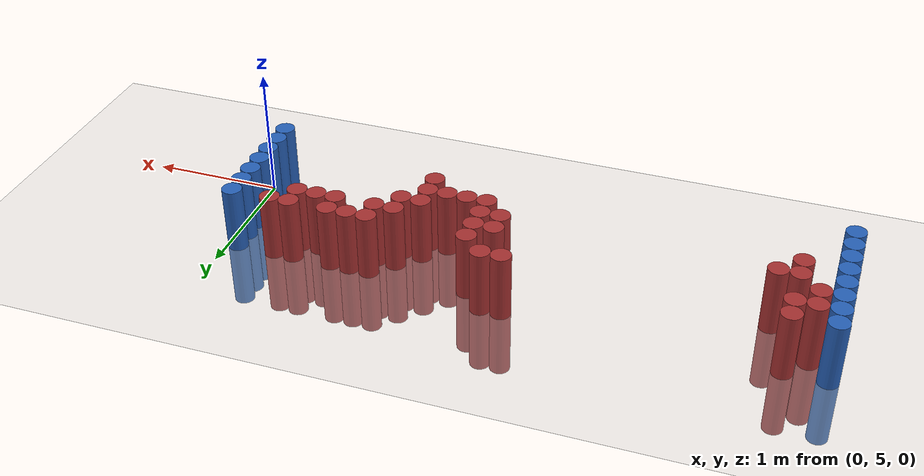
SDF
<sdf version="1.6">
 <world name="default">
  <model name="ground_plane">
   <static>1</static>
   <link name="link">
    <collision name="collision">
     <geometry><plane><normal>0 0 1</normal><size>100 100</size></plane></geometry>
     <surface><friction><ode><mu>100</mu><mu2>50</mu2></ode></friction></surface>
    </collision>
    <visual name="visual">
     <cast_shadows>0</cast_shadows>
     <geometry><plane><normal>0 0 1</normal><size>100 100</size></plane></geometry>
     <material>
      <script><uri>file://media/materials/scripts/gazebo.material</uri><name>Gazebo/Grey</name></script>
     </material>
    </visual>
   </link>
  </model>
  <model name="unit_cylinder_92">
   <static>1</static>
   <pose>-0.075000 4.875000 0.000000 0.000000 0.000000 0.000000</pose>
   <link name="link">
    <inertial>
     <mass>1</mass>
     <inertia><ixx>0.145833</ixx><ixy>0</ixy><ixz>0</ixz><iyy>0.145833</iyy><iyz>0</iyz><izz>0.125</izz></inertia>
    </inertial>
    <collision name="collision">
     <geometry><cylinder><radius>0.075000</radius><length>1</length></cylinder></geometry>
    </collision>
    <visual name="visual">
     <geometry><cylinder><radius>0.075000</radius><length>1</length></cylinder></geometry>
     <material>
      <ambient>0.152000 0.379000 0.720000 1</ambient>
      <diffuse>0.152000 0.379000 0.720000 1</diffuse>
     </material>
     <material>
      <script><name>Gazebo/Grey</name><uri>file://media/materials/scripts/gazebo.material</uri></script>
     </material>
    </visual>
   </link>
  </model>
  <model name="unit_cylinder_93">
   <static>1</static>
   <pose>-4.425000 4.875000 0.000000 0.000000 0.000000 0.000000</pose>
   <link name="link">
    <inertial>
     <mass>1</mass>
     <inertia><ixx>0.145833</ixx><ixy>0</ixy><ixz>0</ixz><iyy>0.145833</iyy><iyz>0</iyz><izz>0.125</izz></inertia>
    </inertial>
    <collision name="collision">
     <geometry><cylinder><radius>0.075000</radius><length>1</length></cylinder></geometry>
    </collision>
    <visual name="visual">
     <geometry><cylinder><radius>0.075000</radius><length>1</length></cylinder></geometry>
     <material>
      <ambient>0.152000 0.379000 0.720000 1</ambient>
      <diffuse>0.152000 0.379000 0.720000 1</diffuse>
     </material>
     <material>
      <script><name>Gazebo/Grey</name><uri>file://media/materials/scripts/gazebo.material</uri></script>
     </material>
    </visual>
   </link>
  </model>
  <model name="unit_cylinder_94">
   <static>1</static>
   <pose>-0.075000 5.025000 0.000000 0.000000 0.000000 0.000000</pose>
   <link name="link">
    <inertial>
     <mass>1</mass>
     <inertia><ixx>0.145833</ixx><ixy>0</ixy><ixz>0</ixz><iyy>0.145833</iyy><iyz>0</iyz><izz>0.125</izz></inertia>
    </inertial>
    <collision name="collision">
     <geometry><cylinder><radius>0.075000</radius><length>1</length></cylinder></geometry>
    </collision>
    <visual name="visual">
     <geometry><cylinder><radius>0.075000</radius><length>1</length></cylinder></geometry>
     <material>
      <ambient>0.152000 0.379000 0.720000 1</ambient>
      <diffuse>0.152000 0.379000 0.720000 1</diffuse>
     </material>
     <material>
      <script><name>Gazebo/Grey</name><uri>file://media/materials/scripts/gazebo.material</uri></script>
     </material>
    </visual>
   </link>
  </model>
  <model name="unit_cylinder_95">
   <static>1</static>
   <pose>-4.425000 5.025000 0.000000 0.000000 0.000000 0.000000</pose>
   <link name="link">
    <inertial>
     <mass>1</mass>
     <inertia><ixx>0.145833</ixx><ixy>0</ixy><ixz>0</ixz><iyy>0.145833</iyy><iyz>0</iyz><izz>0.125</izz></inertia>
    </inertial>
    <collision name="collision">
     <geometry><cylinder><radius>0.075000</radius><length>1</length></cylinder></geometry>
    </collision>
    <visual name="visual">
     <geometry><cylinder><radius>0.075000</radius><length>1</length></cylinder></geometry>
     <material>
      <ambient>0.152000 0.379000 0.720000 1</ambient>
      <diffuse>0.152000 0.379000 0.720000 1</diffuse>
     </material>
     <material>
      <script><name>Gazebo/Grey</name><uri>file://media/materials/scripts/gazebo.material</uri></script>
     </material>
    </visual>
   </link>
  </model>
  <model name="unit_cylinder_96">
   <static>1</static>
   <pose>-4.425000 5.175000 0.000000 0.000000 0.000000 0.000000</pose>
   <link name="link">
    <inertial>
     <mass>1</mass>
     <inertia><ixx>0.145833</ixx><ixy>0</ixy><ixz>0</ixz><iyy>0.145833</iyy><iyz>0</iyz><izz>0.125</izz></inertia>
    </inertial>
    <collision name="collision">
     <geometry><cylinder><radius>0.075000</radius><length>1</length></cylinder></geometry>
    </collision>
    <visual name="visual">
     <geometry><cylinder><radius>0.075000</radius><length>1</length></cylinder></geometry>
     <material>
      <ambient>0.152000 0.379000 0.720000 1</ambient>
      <diffuse>0.152000 0.379000 0.720000 1</diffuse>
     </material>
     <material>
      <script><name>Gazebo/Grey</name><uri>file://media/materials/scripts/gazebo.material</uri></script>
     </material>
    </visual>
   </link>
  </model>
  <model name="unit_cylinder_97">
   <static>1</static>
   <pose>-4.425000 5.325000 0.000000 0.000000 0.000000 0.000000</pose>
   <link name="link">
    <inertial>
     <mass>1</mass>
     <inertia><ixx>0.145833</ixx><ixy>0</ixy><ixz>0</ixz><iyy>0.145833</iyy><iyz>0</iyz><izz>0.125</izz></inertia>
    </inertial>
    <collision name="collision">
     <geometry><cylinder><radius>0.075000</radius><length>1</length></cylinder></geometry>
    </collision>
    <visual name="visual">
     <geometry><cylinder><radius>0.075000</radius><length>1</length></cylinder></geometry>
     <material>
      <ambient>0.152000 0.379000 0.720000 1</ambient>
      <diffuse>0.152000 0.379000 0.720000 1</diffuse>
     </material>
     <material>
      <script><name>Gazebo/Grey</name><uri>file://media/materials/scripts/gazebo.material</uri></script>
     </material>
    </visual>
   </link>
  </model>
  <model name="unit_cylinder_98">
   <static>1</static>
   <pose>-4.425000 5.475000 0.000000 0.000000 0.000000 0.000000</pose>
   <link name="link">
    <inertial>
     <mass>1</mass>
     <inertia><ixx>0.145833</ixx><ixy>0</ixy><ixz>0</ixz><iyy>0.145833</iyy><iyz>0</iyz><izz>0.125</izz></inertia>
    </inertial>
    <collision name="collision">
     <geometry><cylinder><radius>0.075000</radius><length>1</length></cylinder></geometry>
    </collision>
    <visual name="visual">
     <geometry><cylinder><radius>0.075000</radius><length>1</length></cylinder></geometry>
     <material>
      <ambient>0.152000 0.379000 0.720000 1</ambient>
      <diffuse>0.152000 0.379000 0.720000 1</diffuse>
     </material>
     <material>
      <script><name>Gazebo/Grey</name><uri>file://media/materials/scripts/gazebo.material</uri></script>
     </material>
    </visual>
   </link>
  </model>
  <model name="unit_cylinder_99">
   <static>1</static>
   <pose>-4.425000 5.625000 0.000000 0.000000 0.000000 0.000000</pose>
   <link name="link">
    <inertial>
     <mass>1</mass>
     <inertia><ixx>0.145833</ixx><ixy>0</ixy><ixz>0</ixz><iyy>0.145833</iyy><iyz>0</iyz><izz>0.125</izz></inertia>
    </inertial>
    <collision name="collision">
     <geometry><cylinder><radius>0.075000</radius><length>1</length></cylinder></geometry>
    </collision>
    <visual name="visual">
     <geometry><cylinder><radius>0.075000</radius><length>1</length></cylinder></geometry>
     <material>
      <ambient>0.152000 0.379000 0.720000 1</ambient>
      <diffuse>0.152000 0.379000 0.720000 1</diffuse>
     </material>
     <material>
      <script><name>Gazebo/Grey</name><uri>file://media/materials/scripts/gazebo.material</uri></script>
     </material>
    </visual>
   </link>
  </model>
  <model name="unit_cylinder_100">
   <static>1</static>
   <pose>-4.425000 5.775000 0.000000 0.000000 0.000000 0.000000</pose>
   <link name="link">
    <inertial>
     <mass>1</mass>
     <inertia><ixx>0.145833</ixx><ixy>0</ixy><ixz>0</ixz><iyy>0.145833</iyy><iyz>0</iyz><izz>0.125</izz></inertia>
    </inertial>
    <collision name="collision">
     <geometry><cylinder><radius>0.075000</radius><length>1</length></cylinder></geometry>
    </collision>
    <visual name="visual">
     <geometry><cylinder><radius>0.075000</radius><length>1</length></cylinder></geometry>
     <material>
      <ambient>0.152000 0.379000 0.720000 1</ambient>
      <diffuse>0.152000 0.379000 0.720000 1</diffuse>
     </material>
     <material>
      <script><name>Gazebo/Grey</name><uri>file://media/materials/scripts/gazebo.material</uri></script>
     </material>
    </visual>
   </link>
  </model>
  <model name="unit_cylinder_101">
   <static>1</static>
   <pose>-4.425000 5.925000 0.000000 0.000000 0.000000 0.000000</pose>
   <link name="link">
    <inertial>
     <mass>1</mass>
     <inertia><ixx>0.145833</ixx><ixy>0</ixy><ixz>0</ixz><iyy>0.145833</iyy><iyz>0</iyz><izz>0.125</izz></inertia>
    </inertial>
    <collision name="collision">
     <geometry><cylinder><radius>0.075000</radius><length>1</length></cylinder></geometry>
    </collision>
    <visual name="visual">
     <geometry><cylinder><radius>0.075000</radius><length>1</length></cylinder></geometry>
     <material>
      <ambient>0.152000 0.379000 0.720000 1</ambient>
      <diffuse>0.152000 0.379000 0.720000 1</diffuse>
     </material>
     <material>
      <script><name>Gazebo/Grey</name><uri>file://media/materials/scripts/gazebo.material</uri></script>
     </material>
    </visual>
   </link>
  </model>
  <model name="unit_cylinder_126">
   <static>1</static>
   <pose>-4.275000 5.625000 0.000000 0.000000 0.000000 0.000000</pose>
   <link name="link">
    <inertial>
     <mass>1</mass>
     <inertia><ixx>0.145833</ixx><ixy>0</ixy><ixz>0</ixz><iyy>0.145833</iyy><iyz>0</iyz><izz>0.125</izz></inertia>
    </inertial>
    <collision name="collision">
     <geometry><cylinder><radius>0.075000</radius><length>1</length></cylinder></geometry>
    </collision>
    <visual name="visual">
     <geometry><cylinder><radius>0.075000</radius><length>1</length></cylinder></geometry>
     <material>
      <ambient>0.648000 0.192000 0.192000 1</ambient>
      <diffuse>0.648000 0.192000 0.192000 1</diffuse>
     </material>
     <material>
      <script><name>Gazebo/Grey</name><uri>file://media/materials/scripts/gazebo.material</uri></script>
     </material>
    </visual>
   </link>
  </model>
  <model name="unit_cylinder_127">
   <static>1</static>
   <pose>-4.275000 5.775000 0.000000 0.000000 0.000000 0.000000</pose>
   <link name="link">
    <inertial>
     <mass>1</mass>
     <inertia><ixx>0.145833</ixx><ixy>0</ixy><ixz>0</ixz><iyy>0.145833</iyy><iyz>0</iyz><izz>0.125</izz></inertia>
    </inertial>
    <collision name="collision">
     <geometry><cylinder><radius>0.075000</radius><length>1</length></cylinder></geometry>
    </collision>
    <visual name="visual">
     <geometry><cylinder><radius>0.075000</radius><length>1</length></cylinder></geometry>
     <material>
      <ambient>0.648000 0.192000 0.192000 1</ambient>
      <diffuse>0.648000 0.192000 0.192000 1</diffuse>
     </material>
     <material>
      <script><name>Gazebo/Grey</name><uri>file://media/materials/scripts/gazebo.material</uri></script>
     </material>
    </visual>
   </link>
  </model>
  <model name="unit_cylinder_129">
   <static>1</static>
   <pose>-4.125000 5.325000 0.000000 0.000000 0.000000 0.000000</pose>
   <link name="link">
    <inertial>
     <mass>1</mass>
     <inertia><ixx>0.145833</ixx><ixy>0</ixy><ixz>0</ixz><iyy>0.145833</iyy><iyz>0</iyz><izz>0.125</izz></inertia>
    </inertial>
    <collision name="collision">
     <geometry><cylinder><radius>0.075000</radius><length>1</length></cylinder></geometry>
    </collision>
    <visual name="visual">
     <geometry><cylinder><radius>0.075000</radius><length>1</length></cylinder></geometry>
     <material>
      <ambient>0.648000 0.192000 0.192000 1</ambient>
      <diffuse>0.648000 0.192000 0.192000 1</diffuse>
     </material>
     <material>
      <script><name>Gazebo/Grey</name><uri>file://media/materials/scripts/gazebo.material</uri></script>
     </material>
    </visual>
   </link>
  </model>
  <model name="unit_cylinder_130">
   <static>1</static>
   <pose>-4.125000 5.475000 0.000000 0.000000 0.000000 0.000000</pose>
   <link name="link">
    <inertial>
     <mass>1</mass>
     <inertia><ixx>0.145833</ixx><ixy>0</ixy><ixz>0</ixz><iyy>0.145833</iyy><iyz>0</iyz><izz>0.125</izz></inertia>
    </inertial>
    <collision name="collision">
     <geometry><cylinder><radius>0.075000</radius><length>1</length></cylinder></geometry>
    </collision>
    <visual name="visual">
     <geometry><cylinder><radius>0.075000</radius><length>1</length></cylinder></geometry>
     <material>
      <ambient>0.648000 0.192000 0.192000 1</ambient>
      <diffuse>0.648000 0.192000 0.192000 1</diffuse>
     </material>
     <material>
      <script><name>Gazebo/Grey</name><uri>file://media/materials/scripts/gazebo.material</uri></script>
     </material>
    </visual>
   </link>
  </model>
  <model name="unit_cylinder_131">
   <static>1</static>
   <pose>-4.125000 5.775000 0.000000 0.000000 0.000000 0.000000</pose>
   <link name="link">
    <inertial>
     <mass>1</mass>
     <inertia><ixx>0.145833</ixx><ixy>0</ixy><ixz>0</ixz><iyy>0.145833</iyy><iyz>0</iyz><izz>0.125</izz></inertia>
    </inertial>
    <collision name="collision">
     <geometry><cylinder><radius>0.075000</radius><length>1</length></cylinder></geometry>
    </collision>
    <visual name="visual">
     <geometry><cylinder><radius>0.075000</radius><length>1</length></cylinder></geometry>
     <material>
      <ambient>0.648000 0.192000 0.192000 1</ambient>
      <diffuse>0.648000 0.192000 0.192000 1</diffuse>
     </material>
     <material>
      <script><name>Gazebo/Grey</name><uri>file://media/materials/scripts/gazebo.material</uri></script>
     </material>
    </visual>
   </link>
  </model>
  <model name="unit_cylinder_132">
   <static>1</static>
   <pose>-4.125000 5.925000 0.000000 0.000000 0.000000 0.000000</pose>
   <link name="link">
    <inertial>
     <mass>1</mass>
     <inertia><ixx>0.145833</ixx><ixy>0</ixy><ixz>0</ixz><iyy>0.145833</iyy><iyz>0</iyz><izz>0.125</izz></inertia>
    </inertial>
    <collision name="collision">
     <geometry><cylinder><radius>0.075000</radius><length>1</length></cylinder></geometry>
    </collision>
    <visual name="visual">
     <geometry><cylinder><radius>0.075000</radius><length>1</length></cylinder></geometry>
     <material>
      <ambient>0.648000 0.192000 0.192000 1</ambient>
      <diffuse>0.648000 0.192000 0.192000 1</diffuse>
     </material>
     <material>
      <script><name>Gazebo/Grey</name><uri>file://media/materials/scripts/gazebo.material</uri></script>
     </material>
    </visual>
   </link>
  </model>
  <model name="unit_cylinder_142">
   <static>1</static>
   <pose>-3.975000 5.475000 0.000000 0.000000 0.000000 0.000000</pose>
   <link name="link">
    <inertial>
     <mass>1</mass>
     <inertia><ixx>0.145833</ixx><ixy>0</ixy><ixz>0</ixz><iyy>0.145833</iyy><iyz>0</iyz><izz>0.125</izz></inertia>
    </inertial>
    <collision name="collision">
     <geometry><cylinder><radius>0.075000</radius><length>1</length></cylinder></geometry>
    </collision>
    <visual name="visual">
     <geometry><cylinder><radius>0.075000</radius><length>1</length></cylinder></geometry>
     <material>
      <ambient>0.648000 0.192000 0.192000 1</ambient>
      <diffuse>0.648000 0.192000 0.192000 1</diffuse>
     </material>
     <material>
      <script><name>Gazebo/Grey</name><uri>file://media/materials/scripts/gazebo.material</uri></script>
     </material>
    </visual>
   </link>
  </model>
  <model name="unit_cylinder_185">
   <static>1</static>
   <pose>-2.175000 5.925000 0.000000 0.000000 0.000000 0.000000</pose>
   <link name="link">
    <inertial>
     <mass>1</mass>
     <inertia><ixx>0.145833</ixx><ixy>0</ixy><ixz>0</ixz><iyy>0.145833</iyy><iyz>0</iyz><izz>0.125</izz></inertia>
    </inertial>
    <collision name="collision">
     <geometry><cylinder><radius>0.075000</radius><length>1</length></cylinder></geometry>
    </collision>
    <visual name="visual">
     <geometry><cylinder><radius>0.075000</radius><length>1</length></cylinder></geometry>
     <material>
      <ambient>0.648000 0.192000 0.192000 1</ambient>
      <diffuse>0.648000 0.192000 0.192000 1</diffuse>
     </material>
     <material>
      <script><name>Gazebo/Grey</name><uri>file://media/materials/scripts/gazebo.material</uri></script>
     </material>
    </visual>
   </link>
  </model>
  <model name="unit_cylinder_190">
   <static>1</static>
   <pose>-2.025000 5.475000 0.000000 0.000000 0.000000 0.000000</pose>
   <link name="link">
    <inertial>
     <mass>1</mass>
     <inertia><ixx>0.145833</ixx><ixy>0</ixy><ixz>0</ixz><iyy>0.145833</iyy><iyz>0</iyz><izz>0.125</izz></inertia>
    </inertial>
    <collision name="collision">
     <geometry><cylinder><radius>0.075000</radius><length>1</length></cylinder></geometry>
    </collision>
    <visual name="visual">
     <geometry><cylinder><radius>0.075000</radius><length>1</length></cylinder></geometry>
     <material>
      <ambient>0.648000 0.192000 0.192000 1</ambient>
      <diffuse>0.648000 0.192000 0.192000 1</diffuse>
     </material>
     <material>
      <script><name>Gazebo/Grey</name><uri>file://media/materials/scripts/gazebo.material</uri></script>
     </material>
    </visual>
   </link>
  </model>
  <model name="unit_cylinder_191">
   <static>1</static>
   <pose>-2.025000 5.625000 0.000000 0.000000 0.000000 0.000000</pose>
   <link name="link">
    <inertial>
     <mass>1</mass>
     <inertia><ixx>0.145833</ixx><ixy>0</ixy><ixz>0</ixz><iyy>0.145833</iyy><iyz>0</iyz><izz>0.125</izz></inertia>
    </inertial>
    <collision name="collision">
     <geometry><cylinder><radius>0.075000</radius><length>1</length></cylinder></geometry>
    </collision>
    <visual name="visual">
     <geometry><cylinder><radius>0.075000</radius><length>1</length></cylinder></geometry>
     <material>
      <ambient>0.648000 0.192000 0.192000 1</ambient>
      <diffuse>0.648000 0.192000 0.192000 1</diffuse>
     </material>
     <material>
      <script><name>Gazebo/Grey</name><uri>file://media/materials/scripts/gazebo.material</uri></script>
     </material>
    </visual>
   </link>
  </model>
  <model name="unit_cylinder_192">
   <static>1</static>
   <pose>-2.025000 5.925000 0.000000 0.000000 0.000000 0.000000</pose>
   <link name="link">
    <inertial>
     <mass>1</mass>
     <inertia><ixx>0.145833</ixx><ixy>0</ixy><ixz>0</ixz><iyy>0.145833</iyy><iyz>0</iyz><izz>0.125</izz></inertia>
    </inertial>
    <collision name="collision">
     <geometry><cylinder><radius>0.075000</radius><length>1</length></cylinder></geometry>
    </collision>
    <visual name="visual">
     <geometry><cylinder><radius>0.075000</radius><length>1</length></cylinder></geometry>
     <material>
      <ambient>0.648000 0.192000 0.192000 1</ambient>
      <diffuse>0.648000 0.192000 0.192000 1</diffuse>
     </material>
     <material>
      <script><name>Gazebo/Grey</name><uri>file://media/materials/scripts/gazebo.material</uri></script>
     </material>
    </visual>
   </link>
  </model>
  <model name="unit_cylinder_197">
   <static>1</static>
   <pose>-1.875000 5.325000 0.000000 0.000000 0.000000 0.000000</pose>
   <link name="link">
    <inertial>
     <mass>1</mass>
     <inertia><ixx>0.145833</ixx><ixy>0</ixy><ixz>0</ixz><iyy>0.145833</iyy><iyz>0</iyz><izz>0.125</izz></inertia>
    </inertial>
    <collision name="collision">
     <geometry><cylinder><radius>0.075000</radius><length>1</length></cylinder></geometry>
    </collision>
    <visual name="visual">
     <geometry><cylinder><radius>0.075000</radius><length>1</length></cylinder></geometry>
     <material>
      <ambient>0.648000 0.192000 0.192000 1</ambient>
      <diffuse>0.648000 0.192000 0.192000 1</diffuse>
     </material>
     <material>
      <script><name>Gazebo/Grey</name><uri>file://media/materials/scripts/gazebo.material</uri></script>
     </material>
    </visual>
   </link>
  </model>
  <model name="unit_cylinder_198">
   <static>1</static>
   <pose>-1.875000 5.475000 0.000000 0.000000 0.000000 0.000000</pose>
   <link name="link">
    <inertial>
     <mass>1</mass>
     <inertia><ixx>0.145833</ixx><ixy>0</ixy><ixz>0</ixz><iyy>0.145833</iyy><iyz>0</iyz><izz>0.125</izz></inertia>
    </inertial>
    <collision name="collision">
     <geometry><cylinder><radius>0.075000</radius><length>1</length></cylinder></geometry>
    </collision>
    <visual name="visual">
     <geometry><cylinder><radius>0.075000</radius><length>1</length></cylinder></geometry>
     <material>
      <ambient>0.648000 0.192000 0.192000 1</ambient>
      <diffuse>0.648000 0.192000 0.192000 1</diffuse>
     </material>
     <material>
      <script><name>Gazebo/Grey</name><uri>file://media/materials/scripts/gazebo.material</uri></script>
     </material>
    </visual>
   </link>
  </model>
  <model name="unit_cylinder_199">
   <static>1</static>
   <pose>-1.875000 5.625000 0.000000 0.000000 0.000000 0.000000</pose>
   <link name="link">
    <inertial>
     <mass>1</mass>
     <inertia><ixx>0.145833</ixx><ixy>0</ixy><ixz>0</ixz><iyy>0.145833</iyy><iyz>0</iyz><izz>0.125</izz></inertia>
    </inertial>
    <collision name="collision">
     <geometry><cylinder><radius>0.075000</radius><length>1</length></cylinder></geometry>
    </collision>
    <visual name="visual">
     <geometry><cylinder><radius>0.075000</radius><length>1</length></cylinder></geometry>
     <material>
      <ambient>0.648000 0.192000 0.192000 1</ambient>
      <diffuse>0.648000 0.192000 0.192000 1</diffuse>
     </material>
     <material>
      <script><name>Gazebo/Grey</name><uri>file://media/materials/scripts/gazebo.material</uri></script>
     </material>
    </visual>
   </link>
  </model>
  <model name="unit_cylinder_200">
   <static>1</static>
   <pose>-1.875000 5.775000 0.000000 0.000000 0.000000 0.000000</pose>
   <link name="link">
    <inertial>
     <mass>1</mass>
     <inertia><ixx>0.145833</ixx><ixy>0</ixy><ixz>0</ixz><iyy>0.145833</iyy><iyz>0</iyz><izz>0.125</izz></inertia>
    </inertial>
    <collision name="collision">
     <geometry><cylinder><radius>0.075000</radius><length>1</length></cylinder></geometry>
    </collision>
    <visual name="visual">
     <geometry><cylinder><radius>0.075000</radius><length>1</length></cylinder></geometry>
     <material>
      <ambient>0.648000 0.192000 0.192000 1</ambient>
      <diffuse>0.648000 0.192000 0.192000 1</diffuse>
     </material>
     <material>
      <script><name>Gazebo/Grey</name><uri>file://media/materials/scripts/gazebo.material</uri></script>
     </material>
    </visual>
   </link>
  </model>
  <model name="unit_cylinder_204">
   <static>1</static>
   <pose>-1.725000 5.325000 0.000000 0.000000 0.000000 0.000000</pose>
   <link name="link">
    <inertial>
     <mass>1</mass>
     <inertia><ixx>0.145833</ixx><ixy>0</ixy><ixz>0</ixz><iyy>0.145833</iyy><iyz>0</iyz><izz>0.125</izz></inertia>
    </inertial>
    <collision name="collision">
     <geometry><cylinder><radius>0.075000</radius><length>1</length></cylinder></geometry>
    </collision>
    <visual name="visual">
     <geometry><cylinder><radius>0.075000</radius><length>1</length></cylinder></geometry>
     <material>
      <ambient>0.648000 0.192000 0.192000 1</ambient>
      <diffuse>0.648000 0.192000 0.192000 1</diffuse>
     </material>
     <material>
      <script><name>Gazebo/Grey</name><uri>file://media/materials/scripts/gazebo.material</uri></script>
     </material>
    </visual>
   </link>
  </model>
  <model name="unit_cylinder_206">
   <static>1</static>
   <pose>-1.575000 5.325000 0.000000 0.000000 0.000000 0.000000</pose>
   <link name="link">
    <inertial>
     <mass>1</mass>
     <inertia><ixx>0.145833</ixx><ixy>0</ixy><ixz>0</ixz><iyy>0.145833</iyy><iyz>0</iyz><izz>0.125</izz></inertia>
    </inertial>
    <collision name="collision">
     <geometry><cylinder><radius>0.075000</radius><length>1</length></cylinder></geometry>
    </collision>
    <visual name="visual">
     <geometry><cylinder><radius>0.075000</radius><length>1</length></cylinder></geometry>
     <material>
      <ambient>0.648000 0.192000 0.192000 1</ambient>
      <diffuse>0.648000 0.192000 0.192000 1</diffuse>
     </material>
     <material>
      <script><name>Gazebo/Grey</name><uri>file://media/materials/scripts/gazebo.material</uri></script>
     </material>
    </visual>
   </link>
  </model>
  <model name="unit_cylinder_208">
   <static>1</static>
   <pose>-1.425000 5.175000 0.000000 0.000000 0.000000 0.000000</pose>
   <link name="link">
    <inertial>
     <mass>1</mass>
     <inertia><ixx>0.145833</ixx><ixy>0</ixy><ixz>0</ixz><iyy>0.145833</iyy><iyz>0</iyz><izz>0.125</izz></inertia>
    </inertial>
    <collision name="collision">
     <geometry><cylinder><radius>0.075000</radius><length>1</length></cylinder></geometry>
    </collision>
    <visual name="visual">
     <geometry><cylinder><radius>0.075000</radius><length>1</length></cylinder></geometry>
     <material>
      <ambient>0.648000 0.192000 0.192000 1</ambient>
      <diffuse>0.648000 0.192000 0.192000 1</diffuse>
     </material>
     <material>
      <script><name>Gazebo/Grey</name><uri>file://media/materials/scripts/gazebo.material</uri></script>
     </material>
    </visual>
   </link>
  </model>
  <model name="unit_cylinder_209">
   <static>1</static>
   <pose>-1.425000 5.325000 0.000000 0.000000 0.000000 0.000000</pose>
   <link name="link">
    <inertial>
     <mass>1</mass>
     <inertia><ixx>0.145833</ixx><ixy>0</ixy><ixz>0</ixz><iyy>0.145833</iyy><iyz>0</iyz><izz>0.125</izz></inertia>
    </inertial>
    <collision name="collision">
     <geometry><cylinder><radius>0.075000</radius><length>1</length></cylinder></geometry>
    </collision>
    <visual name="visual">
     <geometry><cylinder><radius>0.075000</radius><length>1</length></cylinder></geometry>
     <material>
      <ambient>0.648000 0.192000 0.192000 1</ambient>
      <diffuse>0.648000 0.192000 0.192000 1</diffuse>
     </material>
     <material>
      <script><name>Gazebo/Grey</name><uri>file://media/materials/scripts/gazebo.material</uri></script>
     </material>
    </visual>
   </link>
  </model>
  <model name="unit_cylinder_210">
   <static>1</static>
   <pose>-1.425000 5.475000 0.000000 0.000000 0.000000 0.000000</pose>
   <link name="link">
    <inertial>
     <mass>1</mass>
     <inertia><ixx>0.145833</ixx><ixy>0</ixy><ixz>0</ixz><iyy>0.145833</iyy><iyz>0</iyz><izz>0.125</izz></inertia>
    </inertial>
    <collision name="collision">
     <geometry><cylinder><radius>0.075000</radius><length>1</length></cylinder></geometry>
    </collision>
    <visual name="visual">
     <geometry><cylinder><radius>0.075000</radius><length>1</length></cylinder></geometry>
     <material>
      <ambient>0.648000 0.192000 0.192000 1</ambient>
      <diffuse>0.648000 0.192000 0.192000 1</diffuse>
     </material>
     <material>
      <script><name>Gazebo/Grey</name><uri>file://media/materials/scripts/gazebo.material</uri></script>
     </material>
    </visual>
   </link>
  </model>
  <model name="unit_cylinder_214">
   <static>1</static>
   <pose>-1.275000 5.475000 0.000000 0.000000 0.000000 0.000000</pose>
   <link name="link">
    <inertial>
     <mass>1</mass>
     <inertia><ixx>0.145833</ixx><ixy>0</ixy><ixz>0</ixz><iyy>0.145833</iyy><iyz>0</iyz><izz>0.125</izz></inertia>
    </inertial>
    <collision name="collision">
     <geometry><cylinder><radius>0.075000</radius><length>1</length></cylinder></geometry>
    </collision>
    <visual name="visual">
     <geometry><cylinder><radius>0.075000</radius><length>1</length></cylinder></geometry>
     <material>
      <ambient>0.648000 0.192000 0.192000 1</ambient>
      <diffuse>0.648000 0.192000 0.192000 1</diffuse>
     </material>
     <material>
      <script><name>Gazebo/Grey</name><uri>file://media/materials/scripts/gazebo.material</uri></script>
     </material>
    </visual>
   </link>
  </model>
  <model name="unit_cylinder_215">
   <static>1</static>
   <pose>-1.275000 5.625000 0.000000 0.000000 0.000000 0.000000</pose>
   <link name="link">
    <inertial>
     <mass>1</mass>
     <inertia><ixx>0.145833</ixx><ixy>0</ixy><ixz>0</ixz><iyy>0.145833</iyy><iyz>0</iyz><izz>0.125</izz></inertia>
    </inertial>
    <collision name="collision">
     <geometry><cylinder><radius>0.075000</radius><length>1</length></cylinder></geometry>
    </collision>
    <visual name="visual">
     <geometry><cylinder><radius>0.075000</radius><length>1</length></cylinder></geometry>
     <material>
      <ambient>0.648000 0.192000 0.192000 1</ambient>
      <diffuse>0.648000 0.192000 0.192000 1</diffuse>
     </material>
     <material>
      <script><name>Gazebo/Grey</name><uri>file://media/materials/scripts/gazebo.material</uri></script>
     </material>
    </visual>
   </link>
  </model>
  <model name="unit_cylinder_217">
   <static>1</static>
   <pose>-1.125000 5.625000 0.000000 0.000000 0.000000 0.000000</pose>
   <link name="link">
    <inertial>
     <mass>1</mass>
     <inertia><ixx>0.145833</ixx><ixy>0</ixy><ixz>0</ixz><iyy>0.145833</iyy><iyz>0</iyz><izz>0.125</izz></inertia>
    </inertial>
    <collision name="collision">
     <geometry><cylinder><radius>0.075000</radius><length>1</length></cylinder></geometry>
    </collision>
    <visual name="visual">
     <geometry><cylinder><radius>0.075000</radius><length>1</length></cylinder></geometry>
     <material>
      <ambient>0.648000 0.192000 0.192000 1</ambient>
      <diffuse>0.648000 0.192000 0.192000 1</diffuse>
     </material>
     <material>
      <script><name>Gazebo/Grey</name><uri>file://media/materials/scripts/gazebo.material</uri></script>
     </material>
    </visual>
   </link>
  </model>
  <model name="unit_cylinder_218">
   <static>1</static>
   <pose>-1.125000 5.775000 0.000000 0.000000 0.000000 0.000000</pose>
   <link name="link">
    <inertial>
     <mass>1</mass>
     <inertia><ixx>0.145833</ixx><ixy>0</ixy><ixz>0</ixz><iyy>0.145833</iyy><iyz>0</iyz><izz>0.125</izz></inertia>
    </inertial>
    <collision name="collision">
     <geometry><cylinder><radius>0.075000</radius><length>1</length></cylinder></geometry>
    </collision>
    <visual name="visual">
     <geometry><cylinder><radius>0.075000</radius><length>1</length></cylinder></geometry>
     <material>
      <ambient>0.648000 0.192000 0.192000 1</ambient>
      <diffuse>0.648000 0.192000 0.192000 1</diffuse>
     </material>
     <material>
      <script><name>Gazebo/Grey</name><uri>file://media/materials/scripts/gazebo.material</uri></script>
     </material>
    </visual>
   </link>
  </model>
  <model name="unit_cylinder_220">
   <static>1</static>
   <pose>-0.975000 5.775000 0.000000 0.000000 0.000000 0.000000</pose>
   <link name="link">
    <inertial>
     <mass>1</mass>
     <inertia><ixx>0.145833</ixx><ixy>0</ixy><ixz>0</ixz><iyy>0.145833</iyy><iyz>0</iyz><izz>0.125</izz></inertia>
    </inertial>
    <collision name="collision">
     <geometry><cylinder><radius>0.075000</radius><length>1</length></cylinder></geometry>
    </collision>
    <visual name="visual">
     <geometry><cylinder><radius>0.075000</radius><length>1</length></cylinder></geometry>
     <material>
      <ambient>0.648000 0.192000 0.192000 1</ambient>
      <diffuse>0.648000 0.192000 0.192000 1</diffuse>
     </material>
     <material>
      <script><name>Gazebo/Grey</name><uri>file://media/materials/scripts/gazebo.material</uri></script>
     </material>
    </visual>
   </link>
  </model>
  <model name="unit_cylinder_222">
   <static>1</static>
   <pose>-0.825000 5.625000 0.000000 0.000000 0.000000 0.000000</pose>
   <link name="link">
    <inertial>
     <mass>1</mass>
     <inertia><ixx>0.145833</ixx><ixy>0</ixy><ixz>0</ixz><iyy>0.145833</iyy><iyz>0</iyz><izz>0.125</izz></inertia>
    </inertial>
    <collision name="collision">
     <geometry><cylinder><radius>0.075000</radius><length>1</length></cylinder></geometry>
    </collision>
    <visual name="visual">
     <geometry><cylinder><radius>0.075000</radius><length>1</length></cylinder></geometry>
     <material>
      <ambient>0.648000 0.192000 0.192000 1</ambient>
      <diffuse>0.648000 0.192000 0.192000 1</diffuse>
     </material>
     <material>
      <script><name>Gazebo/Grey</name><uri>file://media/materials/scripts/gazebo.material</uri></script>
     </material>
    </visual>
   </link>
  </model>
  <model name="unit_cylinder_223">
   <static>1</static>
   <pose>-0.825000 5.775000 0.000000 0.000000 0.000000 0.000000</pose>
   <link name="link">
    <inertial>
     <mass>1</mass>
     <inertia><ixx>0.145833</ixx><ixy>0</ixy><ixz>0</ixz><iyy>0.145833</iyy><iyz>0</iyz><izz>0.125</izz></inertia>
    </inertial>
    <collision name="collision">
     <geometry><cylinder><radius>0.075000</radius><length>1</length></cylinder></geometry>
    </collision>
    <visual name="visual">
     <geometry><cylinder><radius>0.075000</radius><length>1</length></cylinder></geometry>
     <material>
      <ambient>0.648000 0.192000 0.192000 1</ambient>
      <diffuse>0.648000 0.192000 0.192000 1</diffuse>
     </material>
     <material>
      <script><name>Gazebo/Grey</name><uri>file://media/materials/scripts/gazebo.material</uri></script>
     </material>
    </visual>
   </link>
  </model>
  <model name="unit_cylinder_226">
   <static>1</static>
   <pose>-0.675000 5.625000 0.000000 0.000000 0.000000 0.000000</pose>
   <link name="link">
    <inertial>
     <mass>1</mass>
     <inertia><ixx>0.145833</ixx><ixy>0</ixy><ixz>0</ixz><iyy>0.145833</iyy><iyz>0</iyz><izz>0.125</izz></inertia>
    </inertial>
    <collision name="collision">
     <geometry><cylinder><radius>0.075000</radius><length>1</length></cylinder></geometry>
    </collision>
    <visual name="visual">
     <geometry><cylinder><radius>0.075000</radius><length>1</length></cylinder></geometry>
     <material>
      <ambient>0.648000 0.192000 0.192000 1</ambient>
      <diffuse>0.648000 0.192000 0.192000 1</diffuse>
     </material>
     <material>
      <script><name>Gazebo/Grey</name><uri>file://media/materials/scripts/gazebo.material</uri></script>
     </material>
    </visual>
   </link>
  </model>
  <model name="unit_cylinder_228">
   <static>1</static>
   <pose>-0.525000 5.625000 0.000000 0.000000 0.000000 0.000000</pose>
   <link name="link">
    <inertial>
     <mass>1</mass>
     <inertia><ixx>0.145833</ixx><ixy>0</ixy><ixz>0</ixz><iyy>0.145833</iyy><iyz>0</iyz><izz>0.125</izz></inertia>
    </inertial>
    <collision name="collision">
     <geometry><cylinder><radius>0.075000</radius><length>1</length></cylinder></geometry>
    </collision>
    <visual name="visual">
     <geometry><cylinder><radius>0.075000</radius><length>1</length></cylinder></geometry>
     <material>
      <ambient>0.648000 0.192000 0.192000 1</ambient>
      <diffuse>0.648000 0.192000 0.192000 1</diffuse>
     </material>
     <material>
      <script><name>Gazebo/Grey</name><uri>file://media/materials/scripts/gazebo.material</uri></script>
     </material>
    </visual>
   </link>
  </model>
  <model name="unit_cylinder_229">
   <static>1</static>
   <pose>-0.525000 5.775000 0.000000 0.000000 0.000000 0.000000</pose>
   <link name="link">
    <inertial>
     <mass>1</mass>
     <inertia><ixx>0.145833</ixx><ixy>0</ixy><ixz>0</ixz><iyy>0.145833</iyy><iyz>0</iyz><izz>0.125</izz></inertia>
    </inertial>
    <collision name="collision">
     <geometry><cylinder><radius>0.075000</radius><length>1</length></cylinder></geometry>
    </collision>
    <visual name="visual">
     <geometry><cylinder><radius>0.075000</radius><length>1</length></cylinder></geometry>
     <material>
      <ambient>0.648000 0.192000 0.192000 1</ambient>
      <diffuse>0.648000 0.192000 0.192000 1</diffuse>
     </material>
     <material>
      <script><name>Gazebo/Grey</name><uri>file://media/materials/scripts/gazebo.material</uri></script>
     </material>
    </visual>
   </link>
  </model>
  <model name="unit_cylinder_237">
   <static>1</static>
   <pose>-0.375000 5.775000 0.000000 0.000000 0.000000 0.000000</pose>
   <link name="link">
    <inertial>
     <mass>1</mass>
     <inertia><ixx>0.145833</ixx><ixy>0</ixy><ixz>0</ixz><iyy>0.145833</iyy><iyz>0</iyz><izz>0.125</izz></inertia>
    </inertial>
    <collision name="collision">
     <geometry><cylinder><radius>0.075000</radius><length>1</length></cylinder></geometry>
    </collision>
    <visual name="visual">
     <geometry><cylinder><radius>0.075000</radius><length>1</length></cylinder></geometry>
     <material>
      <ambient>0.648000 0.192000 0.192000 1</ambient>
      <diffuse>0.648000 0.192000 0.192000 1</diffuse>
     </material>
     <material>
      <script><name>Gazebo/Grey</name><uri>file://media/materials/scripts/gazebo.material</uri></script>
     </material>
    </visual>
   </link>
  </model>
  <model name="unit_cylinder_245">
   <static>1</static>
   <pose>-0.075000 5.175000 0.000000 0.000000 0.000000 0.000000</pose>
   <link name="link">
    <inertial>
     <mass>1</mass>
     <inertia><ixx>0.145833</ixx><ixy>0</ixy><ixz>0</ixz><iyy>0.145833</iyy><iyz>0</iyz><izz>0.125</izz></inertia>
    </inertial>
    <collision name="collision">
     <geometry><cylinder><radius>0.075000</radius><length>1</length></cylinder></geometry>
    </collision>
    <visual name="visual">
     <geometry><cylinder><radius>0.075000</radius><length>1</length></cylinder></geometry>
     <material>
      <ambient>0.152000 0.379000 0.720000 1</ambient>
      <diffuse>0.152000 0.379000 0.720000 1</diffuse>
     </material>
     <material>
      <script><name>Gazebo/Grey</name><uri>file://media/materials/scripts/gazebo.material</uri></script>
     </material>
    </visual>
   </link>
  </model>
  <model name="unit_cylinder_246">
   <static>1</static>
   <pose>-0.075000 5.325000 0.000000 0.000000 0.000000 0.000000</pose>
   <link name="link">
    <inertial>
     <mass>1</mass>
     <inertia><ixx>0.145833</ixx><ixy>0</ixy><ixz>0</ixz><iyy>0.145833</iyy><iyz>0</iyz><izz>0.125</izz></inertia>
    </inertial>
    <collision name="collision">
     <geometry><cylinder><radius>0.075000</radius><length>1</length></cylinder></geometry>
    </collision>
    <visual name="visual">
     <geometry><cylinder><radius>0.075000</radius><length>1</length></cylinder></geometry>
     <material>
      <ambient>0.152000 0.379000 0.720000 1</ambient>
      <diffuse>0.152000 0.379000 0.720000 1</diffuse>
     </material>
     <material>
      <script><name>Gazebo/Grey</name><uri>file://media/materials/scripts/gazebo.material</uri></script>
     </material>
    </visual>
   </link>
  </model>
  <model name="unit_cylinder_247">
   <static>1</static>
   <pose>-0.075000 5.475000 0.000000 0.000000 0.000000 0.000000</pose>
   <link name="link">
    <inertial>
     <mass>1</mass>
     <inertia><ixx>0.145833</ixx><ixy>0</ixy><ixz>0</ixz><iyy>0.145833</iyy><iyz>0</iyz><izz>0.125</izz></inertia>
    </inertial>
    <collision name="collision">
     <geometry><cylinder><radius>0.075000</radius><length>1</length></cylinder></geometry>
    </collision>
    <visual name="visual">
     <geometry><cylinder><radius>0.075000</radius><length>1</length></cylinder></geometry>
     <material>
      <ambient>0.152000 0.379000 0.720000 1</ambient>
      <diffuse>0.152000 0.379000 0.720000 1</diffuse>
     </material>
     <material>
      <script><name>Gazebo/Grey</name><uri>file://media/materials/scripts/gazebo.material</uri></script>
     </material>
    </visual>
   </link>
  </model>
  <model name="unit_cylinder_248">
   <static>1</static>
   <pose>-0.075000 5.625000 0.000000 0.000000 0.000000 0.000000</pose>
   <link name="link">
    <inertial>
     <mass>1</mass>
     <inertia><ixx>0.145833</ixx><ixy>0</ixy><ixz>0</ixz><iyy>0.145833</iyy><iyz>0</iyz><izz>0.125</izz></inertia>
    </inertial>
    <collision name="collision">
     <geometry><cylinder><radius>0.075000</radius><length>1</length></cylinder></geometry>
    </collision>
    <visual name="visual">
     <geometry><cylinder><radius>0.075000</radius><length>1</length></cylinder></geometry>
     <material>
      <ambient>0.152000 0.379000 0.720000 1</ambient>
      <diffuse>0.152000 0.379000 0.720000 1</diffuse>
     </material>
     <material>
      <script><name>Gazebo/Grey</name><uri>file://media/materials/scripts/gazebo.material</uri></script>
     </material>
    </visual>
   </link>
  </model>
  <model name="unit_cylinder_249">
   <static>1</static>
   <pose>-0.075000 5.775000 0.000000 0.000000 0.000000 0.000000</pose>
   <link name="link">
    <inertial>
     <mass>1</mass>
     <inertia><ixx>0.145833</ixx><ixy>0</ixy><ixz>0</ixz><iyy>0.145833</iyy><iyz>0</iyz><izz>0.125</izz></inertia>
    </inertial>
    <collision name="collision">
     <geometry><cylinder><radius>0.075000</radius><length>1</length></cylinder></geometry>
    </collision>
    <visual name="visual">
     <geometry><cylinder><radius>0.075000</radius><length>1</length></cylinder></geometry>
     <material>
      <ambient>0.152000 0.379000 0.720000 1</ambient>
      <diffuse>0.152000 0.379000 0.720000 1</diffuse>
     </material>
     <material>
      <script><name>Gazebo/Grey</name><uri>file://media/materials/scripts/gazebo.material</uri></script>
     </material>
    </visual>
   </link>
  </model>
 </world>
</sdf>
